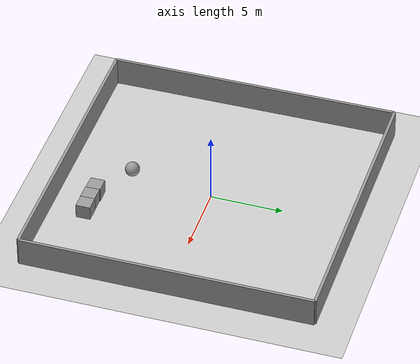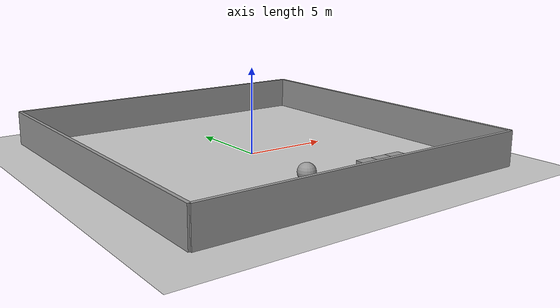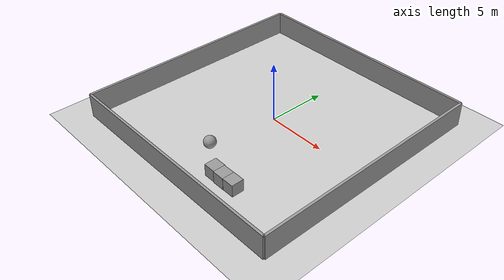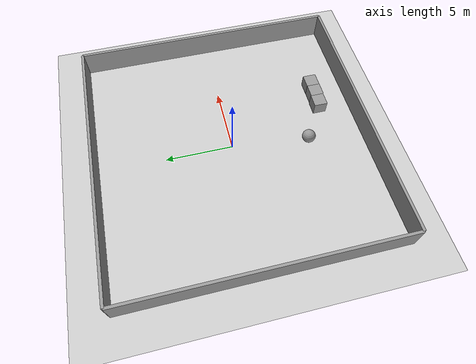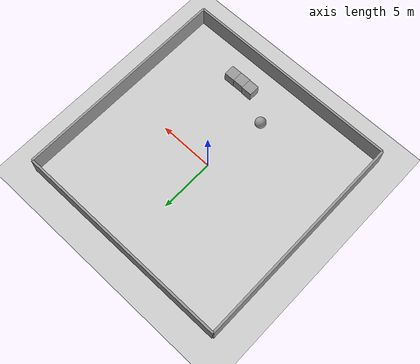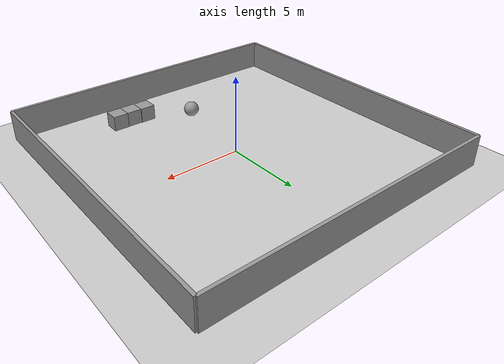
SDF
<sdf version="1.4">
 <world name="default">
  <light name="sun" type="directional">
   <pose>0 0 10 0 -0 0</pose>
   <diffuse>0.8 0.8 0.8 1</diffuse>
   <specular>0.2 0.2 0.2 1</specular>
   <attenuation>
    <range>1000</range>
    <constant>0.9</constant>
    <linear>0.01</linear>
    <quadratic>0.001</quadratic>
   </attenuation>
   <direction>-0.5 0.1 -0.9</direction>
  </light>
  <model name="ground_plane">
   <static>1</static>
   <link name="link">
    <collision name="collision">
     <geometry><plane><normal>0 0 1</normal><size>100 100</size></plane></geometry>
     <surface><friction><ode><mu>100</mu><mu2>50</mu2></ode></friction></surface>
    </collision>
    <visual name="visual">
     <cast_shadows>0</cast_shadows>
     <geometry><plane><normal>0 0 1</normal><size>100 100</size></plane></geometry>
     <material>
      <script><uri>file://media/materials/scripts/gazebo.material</uri><name>Gazebo/Grey</name></script>
     </material>
    </visual>
    <velocity_decay><linear>0</linear><angular>0</angular></velocity_decay>
   </link>
  </model>
  <physics type="ode">
   <max_step_size>0.001</max_step_size>
   <real_time_factor>1</real_time_factor>
   <real_time_update_rate>1000</real_time_update_rate>
   <gravity>0 0 -9.8</gravity>
  </physics>
  <scene><ambient>0.4 0.4 0.4 1</ambient><background>0.7 0.7 0.7 1</background><shadows>1</shadows></scene>
  <model name="unit_box_1">
   <pose>4.07015 -7.47638 0.5 0 -0 -0.001373</pose>
   <link name="link">
    <inertial>
     <mass>1</mass>
     <inertia><ixx>1</ixx><ixy>0</ixy><ixz>0</ixz><iyy>1</iyy><iyz>0</iyz><izz>1</izz></inertia>
    </inertial>
    <collision name="collision"><geometry><box><size>1 1 1</size></box></geometry></collision>
    <visual name="visual">
     <geometry><box><size>1 1 1</size></box></geometry>
     <material>
      <script><uri>file://media/materials/scripts/gazebo.material</uri><name>Gazebo/Grey</name></script>
     </material>
    </visual>
    <velocity_decay><linear>0</linear><angular>0</angular></velocity_decay>
   </link>
   <static>0</static>
  </model>
  <model name="unit_box_2">
   <pose>3.07013 -7.48603 0.5 0 -0 -0.001369</pose>
   <link name="link">
    <inertial>
     <mass>1</mass>
     <inertia><ixx>1</ixx><ixy>0</ixy><ixz>0</ixz><iyy>1</iyy><iyz>0</iyz><izz>1</izz></inertia>
    </inertial>
    <collision name="collision"><geometry><box><size>1 1 1</size></box></geometry></collision>
    <visual name="visual">
     <geometry><box><size>1 1 1</size></box></geometry>
     <material>
      <script><uri>file://media/materials/scripts/gazebo.material</uri><name>Gazebo/Grey</name></script>
     </material>
    </visual>
    <velocity_decay><linear>0</linear><angular>0</angular></velocity_decay>
   </link>
   <static>0</static>
  </model>
  <model name="unit_box_3">
   <pose>2.07018 -7.44688 0.5 0 -0 -0.001368</pose>
   <link name="link">
    <inertial>
     <mass>1</mass>
     <inertia><ixx>1</ixx><ixy>0</ixy><ixz>0</ixz><iyy>1</iyy><iyz>0</iyz><izz>1</izz></inertia>
    </inertial>
    <collision name="collision"><geometry><box><size>1 1 1</size></box></geometry></collision>
    <visual name="visual">
     <geometry><box><size>1 1 1</size></box></geometry>
     <material>
      <script><uri>file://media/materials/scripts/gazebo.material</uri><name>Gazebo/Grey</name></script>
     </material>
    </visual>
    <velocity_decay><linear>0</linear><angular>0</angular></velocity_decay>
   </link>
   <static>0</static>
  </model>
  <model name="unit_sphere_1">
   <pose>-0.674607 -5.75676 0.5 0 -0 0</pose>
   <link name="link">
    <inertial>
     <mass>1</mass>
     <inertia><ixx>1</ixx><ixy>0</ixy><ixz>0</ixz><iyy>1</iyy><iyz>0</iyz><izz>1</izz></inertia>
    </inertial>
    <collision name="collision"><geometry><sphere><radius>0.5</radius></sphere></geometry></collision>
    <visual name="visual">
     <geometry><sphere><radius>0.5</radius></sphere></geometry>
     <material>
      <script><uri>file://media/materials/scripts/gazebo.material</uri><name>Gazebo/Grey</name></script>
     </material>
    </visual>
    <velocity_decay><linear>0</linear><angular>0</angular></velocity_decay>
   </link>
   <static>0</static>
  </model>
  <model name="wall_1_model">
   <pose>0 10 1 0 0 0</pose>
   <link name="link">
    <collision name="collision"><geometry><box><size>20 .2 2</size></box></geometry></collision>
    <visual name="visual">
     <geometry><box><size>20 .2 2</size></box></geometry>
     <material>
      <script><uri>file://media/materials/scripts/gazebo.material</uri><name>Gazebo/Grey</name></script>
     </material>
    </visual>
   </link>
   <static>1</static>
  </model>
  <model name="wall_2_model">
   <pose>0 -10 1 0 0 0</pose>
   <link name="link">
    <collision name="collision"><geometry><box><size>20 .2 2</size></box></geometry></collision>
    <visual name="visual">
     <geometry><box><size>20 .2 2</size></box></geometry>
     <material>
      <script><uri>file://media/materials/scripts/gazebo.material</uri><name>Gazebo/Grey</name></script>
     </material>
    </visual>
   </link>
   <static>1</static>
  </model>
  <model name="wall_3_model">
   <pose>10 0 1 0 0 0</pose>
   <link name="link">
    <collision name="collision"><geometry><box><size>.2 20 2</size></box></geometry></collision>
    <visual name="visual">
     <geometry><box><size>.2 20 2</size></box></geometry>
     <material>
      <script><uri>file://media/materials/scripts/gazebo.material</uri><name>Gazebo/Grey</name></script>
     </material>
    </visual>
   </link>
   <static>1</static>
  </model>
  <model name="wall_4_model">
   <pose>-10 0 1 0 0 0</pose>
   <link name="link">
    <collision name="collision"><geometry><box><size>.2 20 2</size></box></geometry></collision>
    <visual name="visual">
     <geometry><box><size>.2 20 2</size></box></geometry>
     <material>
      <script><uri>file://media/materials/scripts/gazebo.material</uri><name>Gazebo/Grey</name></script>
     </material>
    </visual>
   </link>
   <static>1</static>
  </model>
 </world>
</sdf>
